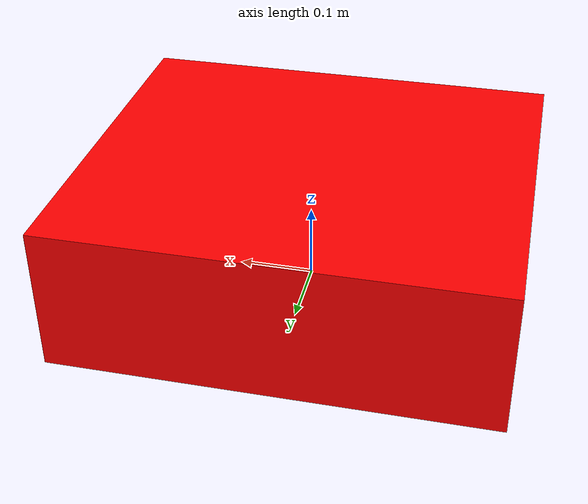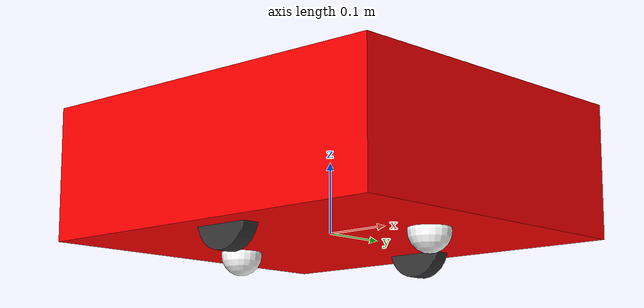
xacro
<?xml version="1.0"?>
<robot xmlns:xacro="http://www.ros.org/wiki/xacro">

    <!-- Qbot chassis-->
    <xacro:property name="chassis_length" value="0.575" />
    <!--horizontal to the red space-->
    <xacro:property name="chassis_width" value="0.500" />
    <!--vertical to the red space-->
    <xacro:property name="chassis_height" value="0.192" />
    <xacro:property name="chassis_mass" value="14.6" />

    <!-- Qbot wheels-->
    <xacro:property name="wheel_radius" value="0.04445" />
    <xacro:property name="wheel_thickness" value="0.026" />
    <xacro:property name="wheel_mass" value="0.05" />
    <xacro:property name="wheel_offset_x" value="0.2875" />
    <!-- distance between back of box and the center of wheels-->
    <xacro:property name="wheel_offset_y" value="0.1965" />
    <xacro:property name="wheel_offset_z" value="0.01" />

    <!-- Qbot caster wheel-->
    <xacro:property name="caster_wheel_radius" value="0.03" />
    <xacro:property name="caster_wheel_mass" value="0.01" />
    <xacro:property name="caster_wheel_offset_x" value="0.11" />
    <!-- distance between back of box and the back caster-->
    <xacro:property name="caster_wheel_offset_z" value="${wheel_offset_z - wheel_radius + caster_wheel_radius}" />

    <material name="white">
        <color rgba="1 1 1 1" />
    </material>

    <material name="orange">
        <color rgba="1 0.3 0.1 1" />
    </material>

    <material name="blue">
        <color rgba="0.2 0.2 1 1" />
    </material>

    <material name="black">
        <color rgba="0 0 0 1" />
    </material>

    <material name="red">
        <color rgba="1 0 0 1" />
    </material>

    <material name="grey">
        <color rgba="0.2 0.2 0.2 1.0" />
    </material>

    <!-- BASE LINK -->

    <link name="base_link">

    </link>

    <!-- BASE_FOOTPRINT LINK -->

    <joint name="base_footprint_joint" type="fixed">
        <parent link="base_link" />
        <child link="base_footprint" />
        <origin xyz="0 0 0" rpy="0 0 0" />
    </joint>

    <link name="base_footprint">
    </link>

    <!-- CHASSIS LINK -->

    <joint name="chassis_joint" type="fixed">
        <parent link="base_link" />
        <child link="chassis" />
        <origin xyz="${-wheel_offset_x} 0 ${-wheel_offset_z}" />
    </joint>

    <link name="chassis">
        <visual>
            <origin xyz="${chassis_length/2} 0 ${chassis_height/2}" />
            <geometry>
                <box size="${chassis_length} ${chassis_width} ${chassis_height}" />
            </geometry>
            <material name="red" />
        </visual>
        <collision>
            <origin xyz="${chassis_length/2} 0 ${chassis_height/2}" />
            <geometry>
                <box size="${chassis_length} ${chassis_width} ${chassis_height}" />
            </geometry>
        </collision>
    </link>

    <gazebo reference="chassis">
        <material>Gazebo/Red</material>
    </gazebo>

    <!-- LEFT WHEEL LINK -->

    <joint name="left_wheel_joint" type="continuous">
        <parent link="base_link" />
        <child link="left_wheel" />
        <origin xyz="0 ${wheel_offset_y} 0" rpy="-${pi/2} 0 0" />
        <axis xyz="0 0 1" />
    </joint>

    <link name="left_wheel">
        <visual>
            <geometry>
                <cylinder radius="${wheel_radius}" length="${wheel_thickness}" />
            </geometry>
            <material name="grey" />
        </visual>
        <collision>
            <geometry>
                <sphere radius="${wheel_radius}" />
            </geometry>
        </collision>
    </link>

    <gazebo reference="left_wheel">
        <material>Gazebo/Grey</material>
    </gazebo>

    <!-- RIGHT WHEEL LINK -->

    <joint name="right_wheel_joint" type="continuous">
        <parent link="base_link" />
        <child link="right_wheel" />
        <origin xyz="0 ${-wheel_offset_y} 0" rpy="${pi/2} 0 0" />
        <axis xyz="0 0 -1" />
    </joint>

    <link name="right_wheel">
        <visual>
            <geometry>
                <cylinder radius="${wheel_radius}" length="${wheel_thickness}" />
            </geometry>
            <material name="grey" />
        </visual>
        <collision>
            <geometry>
                <sphere radius="${wheel_radius}" />
            </geometry>
        </collision>
    </link>

    <gazebo reference="right_wheel">
        <material>Gazebo/Grey</material>
    </gazebo>

    <!-- BACK CASTER WHEEL LINK -->

    <joint name="back_caster_wheel_joint" type="fixed">
        <parent link="chassis" />
        <child link="back_caster_wheel" />
        <origin xyz="${caster_wheel_offset_x} 0 ${caster_wheel_offset_z}" />
    </joint>

    <link name="back_caster_wheel">
        <visual>
            <geometry>
                <sphere radius="${caster_wheel_radius}" />
            </geometry>
            <material name="white" />
        </visual>
        <collision>
            <geometry>
                <sphere radius="${caster_wheel_radius}" />
            </geometry>
        </collision>
    </link>

    <gazebo reference="back_caster_wheel">
        <material>Gazebo/White</material>
        <mu1 value="0.001" />
        <mu2 value="0.001" />
    </gazebo>

    <!-- FRONT CASTER WHEEL LINK -->

    <joint name="front_caster_wheel_joint" type="fixed">
        <parent link="chassis" />
        <child link="front_caster_wheel" />
        <origin xyz="${chassis_length - caster_wheel_offset_x} 0 ${caster_wheel_offset_z}" />
    </joint>

    <link name="front_caster_wheel">
        <visual>
            <geometry>
                <sphere radius="${caster_wheel_radius}" />
            </geometry>
            <material name="white" />
        </visual>
        <collision>
            <geometry>
                <sphere radius="${caster_wheel_radius}" />
            </geometry>
        </collision>
    </link>

    <gazebo reference="front_caster_wheel">
        <material>Gazebo/White</material>
        <mu1 value="0.001" />
        <mu2 value="0.001" />
    </gazebo>

</robot>
